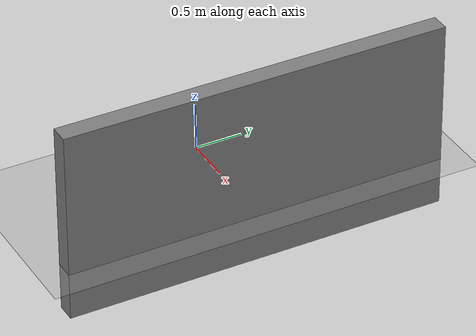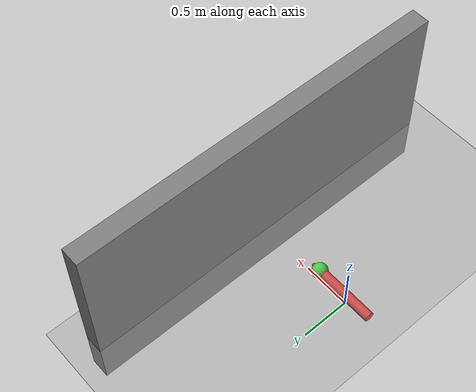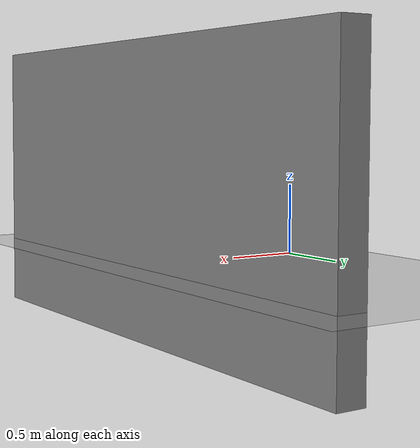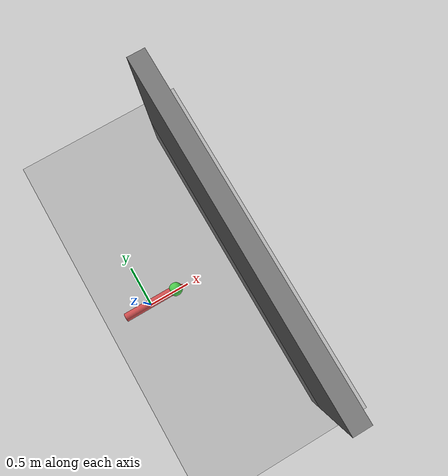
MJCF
<mujoco>
  <compiler />
  <option gravity="0 0 -9.8" timestep="0.01"/>
  <statistic center="0 0 0.5" extent="2"/>

  <worldbody>
    <light name="light" pos="0 0 3" directional="true"/>
    <camera name="fixed" pos="2 -2 1.5" xyaxes="1 0 0 0 0.5 1"/>
    <geom name="ground" type="plane" size="5 5 0.1" rgba="0.6 0.6 0.6 1"/>

    <body name="arm" pos="0 0 0.15">
      <joint name="arm_joint" type="slide" axis="1 0 0" limited="true" range="-1.57 1.57"/>
      <geom name="arm_geom" type="cylinder" size="0.05 0.3" rgba="0.8 0.3 0.3 1" euler="0 90 0"/>

      <body name="end_effector" pos="0.35 0 0">
        <joint name="wrist_joint" type="hinge" axis="1 0 0" limited="true" range="-1.57 1.57"/>
        <geom name="hand_geom" type="sphere" size="0.08" rgba="0.3 0.8 0.3 1"/>

        <site name="end" type="sphere" size="0.02" rgba="1 0 0 0.8" pos="0.08 0 0"/>
      </body>
    </body>

    <geom name="wall" type="box" size="0.1 2 1" pos="1.2 0 0.5" rgba="0.5 0.5 0.5 1"/>
  </worldbody>

  <actuator>
    <position name="arm_act" joint="arm_joint" kp="1000" kv="100"/>
  </actuator>

  <sensor>
    <touch name="touch sensor" site="end"/>
  </sensor>
</mujoco>
